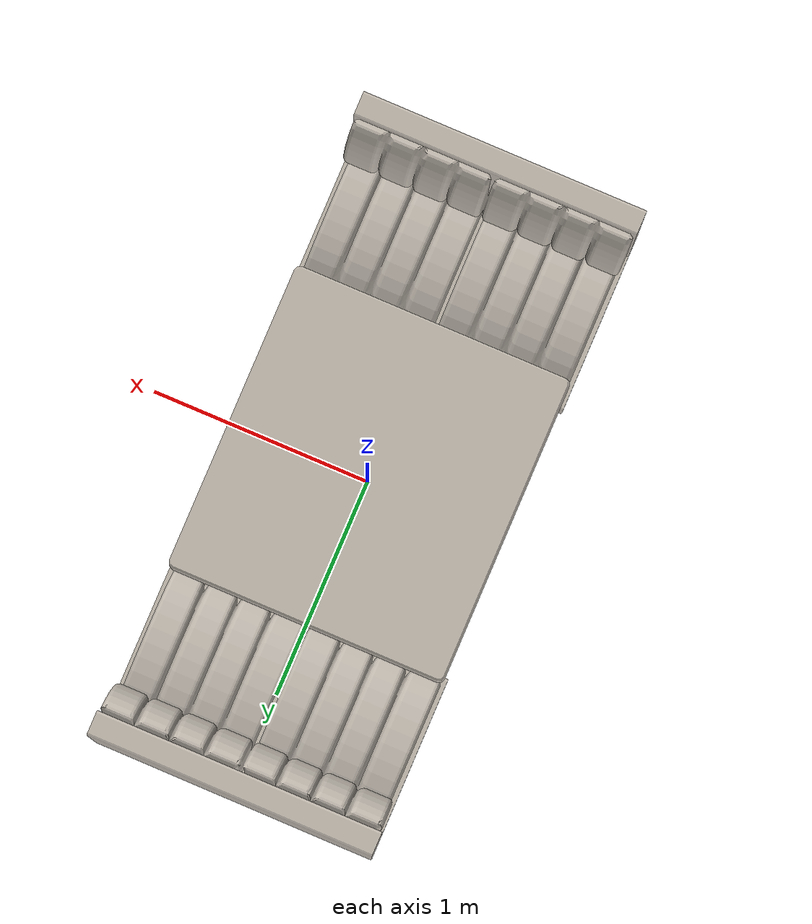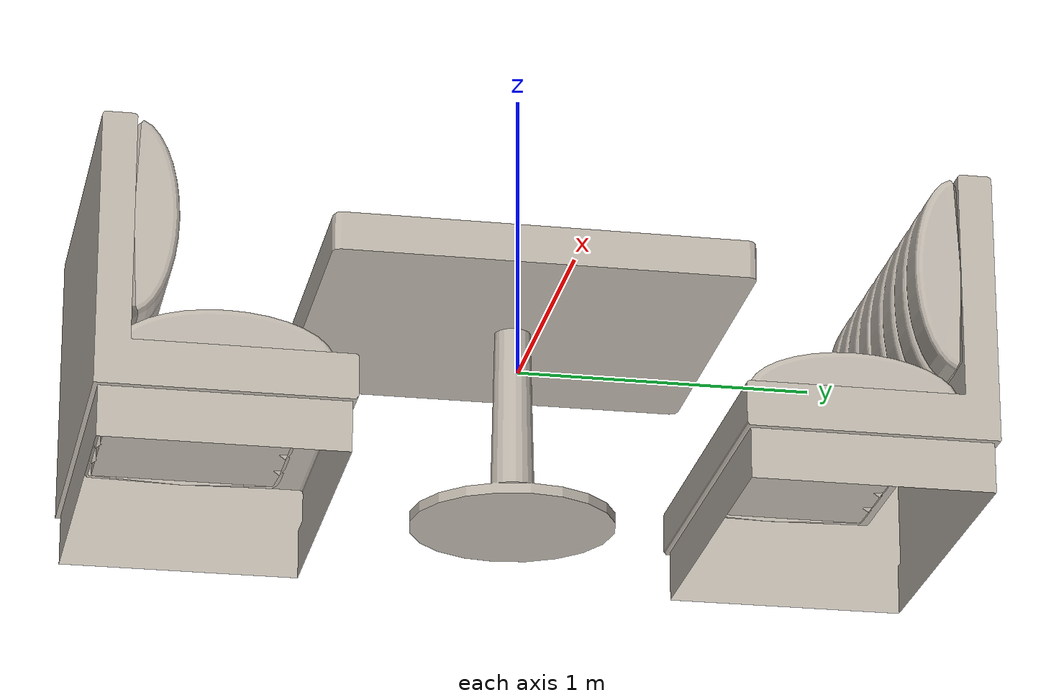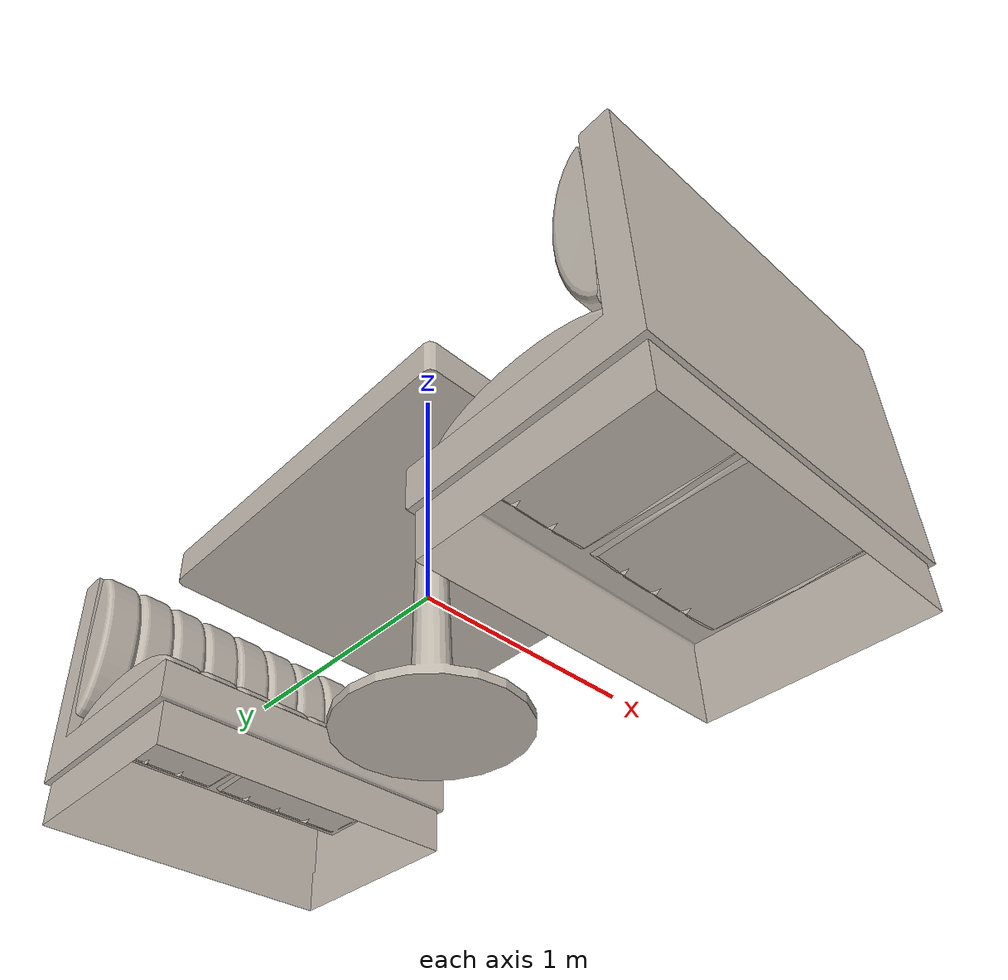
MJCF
<mujoco model="sb_booth_library">
  <compiler angle="radian" meshdir="meshes" texturedir="textures"/>
  <asset>
    <mesh name="sb_booth_mesh00" file="sb_booth_m00.obj"/>
    <texture name="sb_booth_tex00" type="2d" file="sb_booth_t00.png"/>
    <material name="sb_booth_mat00" texture="sb_booth_tex00" reflectance="0.5" specular="0.5" shininess="0.5"/>
    <mesh name="sb_booth_mesh01" file="sb_booth_m01.obj"/>
    <texture name="sb_booth_tex01" type="2d" file="sb_booth_t01.png"/>
    <material name="sb_booth_mat01" texture="sb_booth_tex01" reflectance="0.5" specular="0.5" shininess="0.5"/>
    <mesh name="sb_booth_mesh02" file="sb_booth_m02.obj"/>
    <texture name="sb_booth_tex02" type="2d" file="sb_booth_t02.png"/>
    <material name="sb_booth_mat02" texture="sb_booth_tex02" reflectance="0.5" specular="0.5" shininess="0.5"/>
    <mesh name="sb_booth_mesh03" file="sb_booth_m03.obj"/>
    <texture name="sb_booth_tex03" type="2d" file="sb_booth_t03.png"/>
    <material name="sb_booth_mat03" texture="sb_booth_tex03" reflectance="0.5" specular="0.5" shininess="0.5"/>
    <mesh name="sb_booth_mesh04" file="sb_booth_m04.obj"/>
    <texture name="sb_booth_tex04" type="2d" file="sb_booth_t04.png"/>
    <material name="sb_booth_mat04" texture="sb_booth_tex04" reflectance="0.5" specular="0.5" shininess="0.5"/>
    <mesh name="sb_booth_mesh05" file="sb_booth_m05.obj"/>
    <texture name="sb_booth_tex05" type="2d" file="sb_booth_t05.png"/>
    <material name="sb_booth_mat05" texture="sb_booth_tex05" reflectance="0.5" specular="0.5" shininess="0.5"/>
    <mesh name="sb_booth_mesh06" file="sb_booth_m06.obj"/>
    <texture name="sb_booth_tex06" type="2d" file="sb_booth_t06.png"/>
    <material name="sb_booth_mat06" texture="sb_booth_tex06" reflectance="0.5" specular="0.5" shininess="0.5"/>
    <mesh name="sb_booth_mesh07" file="sb_booth_m07.obj"/>
    <texture name="sb_booth_tex07" type="2d" file="sb_booth_t07.png"/>
    <material name="sb_booth_mat07" texture="sb_booth_tex07" reflectance="0.5" specular="0.5" shininess="0.5"/>
  </asset>
  <worldbody>
    <body name="sb_booth_root" pos="0.0 0.0 0.0">
      <geom name="sb_booth_g00" type="mesh" mesh="sb_booth_mesh00" material="sb_booth_mat00" contype="0" conaffinity="0"/>
      <geom name="sb_booth_g01" type="mesh" mesh="sb_booth_mesh01" material="sb_booth_mat01" contype="0" conaffinity="0"/>
      <geom name="sb_booth_g02" type="mesh" mesh="sb_booth_mesh02" material="sb_booth_mat02" contype="0" conaffinity="0"/>
      <geom name="sb_booth_g03" type="mesh" mesh="sb_booth_mesh03" material="sb_booth_mat03" contype="0" conaffinity="0"/>
      <geom name="sb_booth_g04" type="mesh" mesh="sb_booth_mesh04" material="sb_booth_mat04" contype="0" conaffinity="0"/>
      <geom name="sb_booth_g05" type="mesh" mesh="sb_booth_mesh05" material="sb_booth_mat05" contype="0" conaffinity="0"/>
      <geom name="sb_booth_g06" type="mesh" mesh="sb_booth_mesh06" material="sb_booth_mat06" contype="0" conaffinity="0"/>
      <geom name="sb_booth_g07" type="mesh" mesh="sb_booth_mesh07" material="sb_booth_mat07" contype="0" conaffinity="0"/>
    </body>
  </worldbody>
</mujoco>
